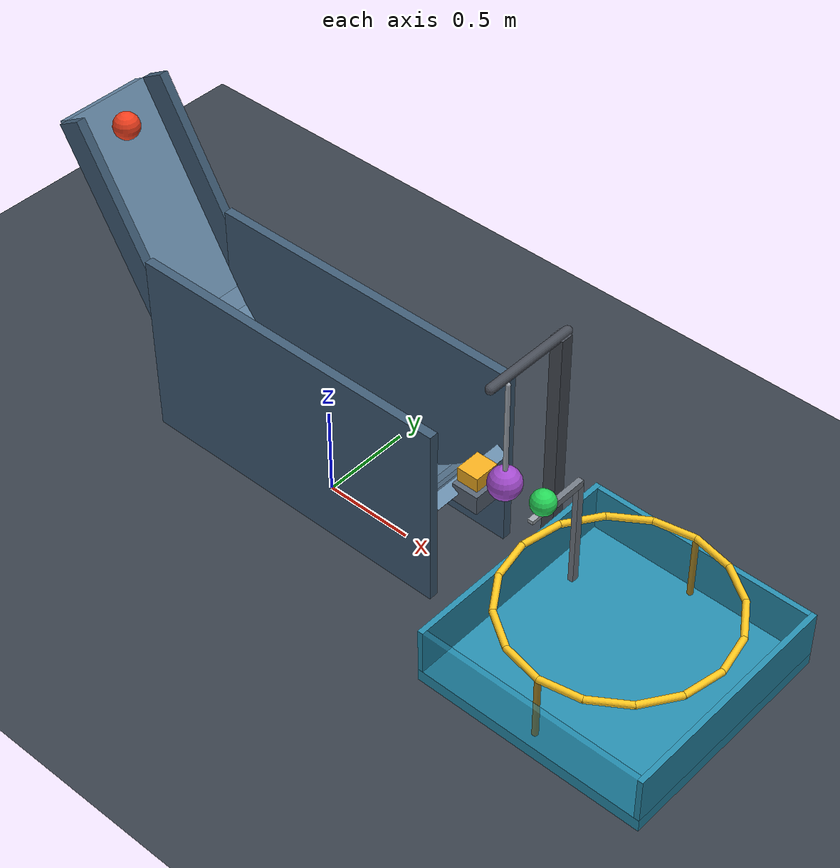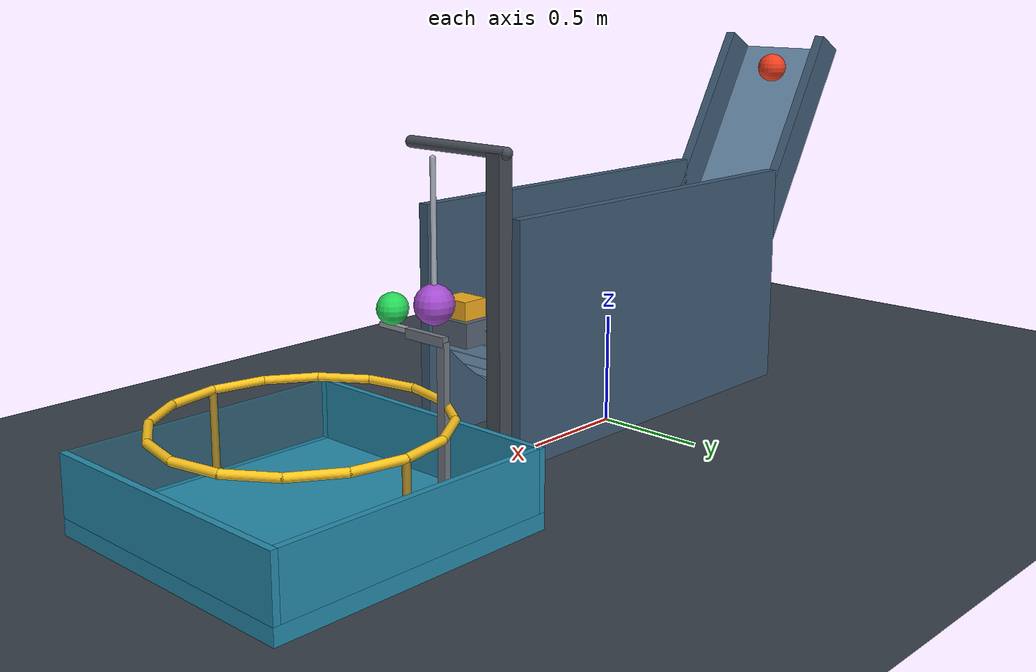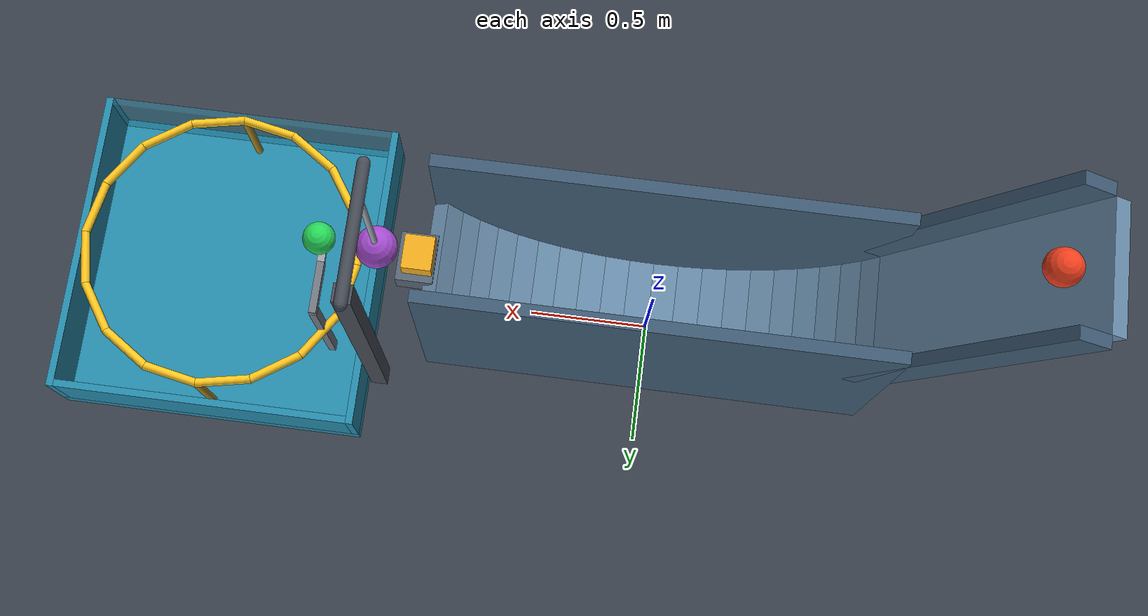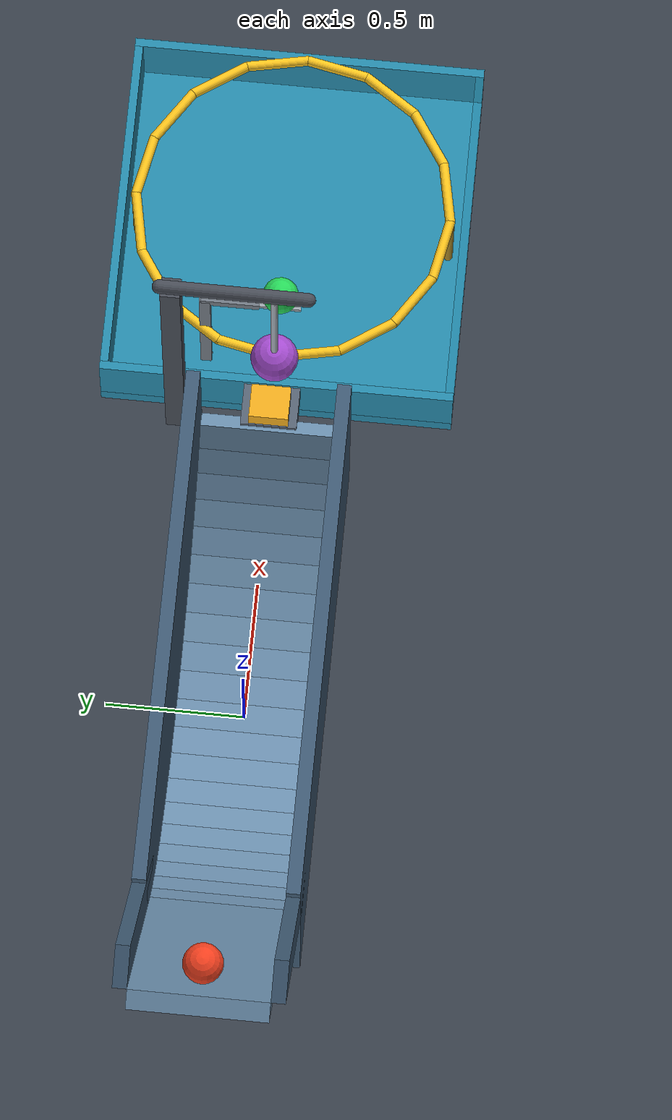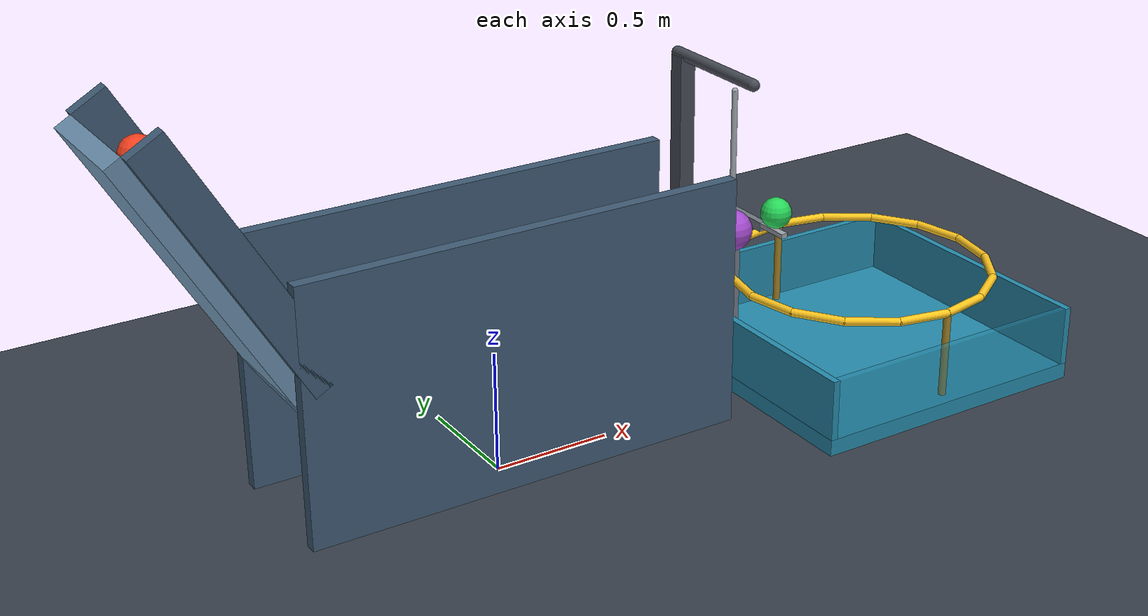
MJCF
<mujoco model="halfpipe_chain_reaction_corrected">
  <compiler angle="degree" autolimits="true"/>
  <option timestep="0.002" gravity="0 0 -9.81" integrator="implicitfast" solver="Newton" iterations="80" cone="elliptic"/>
  <size njmax="3000" nconmax="500"/>
  <visual>
    <global azimuth="135" elevation="-20"/>
    <headlight ambient="0.45 0.45 0.45" diffuse="0.7 0.7 0.7" specular="0.2 0.2 0.2"/>
  </visual>

  <worldbody>
    <light name="overhead" pos="0 0 4" dir="0 0 -1" diffuse="0.8 0.8 0.8"/>
    <camera name="overview" pos="0.5 -5.5 3.0" xyaxes="1 0 0 0 0.40 0.9165"/>
    <geom name="floor" type="plane" pos="0 0 0" size="5 4 0.1" friction="0.8 0.01 0.001" rgba="0.22 0.25 0.29 1"/>

    <!-- Ball1 starts 1 m uphill along the ramp from the halfpipe junction. -->
    <body name="ramp">
      <geom name="ramp_surface" type="box" pos="-1.183836 0 1.160465" euler="0 60 0" size="0.575 0.24 0.035" friction="0.3 0.001 0.0001" condim="3" solref="0.008 1" rgba="0.42 0.56 0.68 1"/>
      <geom name="ramp_rail_left" type="box" pos="-1.088573 -0.265 1.215465" euler="0 60 0" size="0.575 0.025 0.075" friction="0.2 0.001 0.0001" rgba="0.25 0.36 0.46 1"/>
      <geom name="ramp_rail_right" type="box" pos="-1.088573 0.265 1.215465" euler="0 60 0" size="0.575 0.025 0.075" friction="0.2 0.001 0.0001" rgba="0.25 0.36 0.46 1"/>
    </body>

    <!-- Twenty tangent panels form the curved track. -->
    <body name="halfpipe">
      <geom name="halfpipe_panel_01" type="box" pos="-0.868025 0 0.616299" euler="0 57 0" size="0.053 0.24 0.035" friction="0.3 0.001 0.0001" condim="3" solref="0.008 1" rgba="0.42 0.56 0.68 1"/>
      <geom name="halfpipe_panel_02" type="box" pos="-0.804347 0 0.528654" euler="0 51 0" size="0.053 0.24 0.035" friction="0.3 0.001 0.0001" condim="3" solref="0.008 1" rgba="0.42 0.56 0.68 1"/>
      <geom name="halfpipe_panel_03" type="box" pos="-0.731856 0 0.448144" euler="0 45 0" size="0.053 0.24 0.035" friction="0.3 0.001 0.0001" condim="3" solref="0.008 1" rgba="0.42 0.56 0.68 1"/>
      <geom name="halfpipe_panel_04" type="box" pos="-0.651346 0 0.375653" euler="0 39 0" size="0.053 0.24 0.035" friction="0.3 0.001 0.0001" condim="3" solref="0.008 1" rgba="0.42 0.56 0.68 1"/>
      <geom name="halfpipe_panel_05" type="box" pos="-0.563701 0 0.311975" euler="0 33 0" size="0.053 0.24 0.035" friction="0.3 0.001 0.0001" condim="3" solref="0.008 1" rgba="0.42 0.56 0.68 1"/>
      <geom name="halfpipe_panel_06" type="box" pos="-0.469880 0 0.257808" euler="0 27 0" size="0.053 0.24 0.035" friction="0.3 0.001 0.0001" condim="3" solref="0.008 1" rgba="0.42 0.56 0.68 1"/>
      <geom name="halfpipe_panel_07" type="box" pos="-0.370911 0 0.213744" euler="0 21 0" size="0.053 0.24 0.035" friction="0.3 0.001 0.0001" condim="3" solref="0.008 1" rgba="0.42 0.56 0.68 1"/>
      <geom name="halfpipe_panel_08" type="box" pos="-0.267878 0 0.180267" euler="0 15 0" size="0.053 0.24 0.035" friction="0.3 0.001 0.0001" condim="3" solref="0.008 1" rgba="0.42 0.56 0.68 1"/>
      <geom name="halfpipe_panel_09" type="box" pos="-0.161909 0 0.157743" euler="0 9 0" size="0.053 0.24 0.035" friction="0.3 0.001 0.0001" condim="3" solref="0.008 1" rgba="0.42 0.56 0.68 1"/>
      <geom name="halfpipe_panel_10" type="box" pos="-0.054168 0 0.146419" euler="0 3 0" size="0.053 0.24 0.035" friction="0.3 0.001 0.0001" condim="3" solref="0.008 1" rgba="0.42 0.56 0.68 1"/>
      <geom name="halfpipe_panel_11" type="box" pos="0.054168 0 0.146419" euler="0 -3 0" size="0.053 0.24 0.035" friction="0.3 0.001 0.0001" condim="3" solref="0.008 1" rgba="0.42 0.56 0.68 1"/>
      <geom name="halfpipe_panel_12" type="box" pos="0.161909 0 0.157743" euler="0 -9 0" size="0.053 0.24 0.035" friction="0.3 0.001 0.0001" condim="3" solref="0.008 1" rgba="0.42 0.56 0.68 1"/>
      <geom name="halfpipe_panel_13" type="box" pos="0.267878 0 0.180267" euler="0 -15 0" size="0.053 0.24 0.035" friction="0.3 0.001 0.0001" condim="3" solref="0.008 1" rgba="0.42 0.56 0.68 1"/>
      <geom name="halfpipe_panel_14" type="box" pos="0.370911 0 0.213744" euler="0 -21 0" size="0.053 0.24 0.035" friction="0.3 0.001 0.0001" condim="3" solref="0.008 1" rgba="0.42 0.56 0.68 1"/>
      <geom name="halfpipe_panel_15" type="box" pos="0.469880 0 0.257808" euler="0 -27 0" size="0.053 0.24 0.035" friction="0.3 0.001 0.0001" condim="3" solref="0.008 1" rgba="0.42 0.56 0.68 1"/>
      <geom name="halfpipe_panel_16" type="box" pos="0.563701 0 0.311975" euler="0 -33 0" size="0.053 0.24 0.035" friction="0.3 0.001 0.0001" condim="3" solref="0.008 1" rgba="0.42 0.56 0.68 1"/>
      <geom name="halfpipe_panel_17" type="box" pos="0.651346 0 0.375653" euler="0 -39 0" size="0.053 0.24 0.035" friction="0.3 0.001 0.0001" condim="3" solref="0.008 1" rgba="0.42 0.56 0.68 1"/>
      <geom name="halfpipe_panel_18" type="box" pos="0.731856 0 0.448144" euler="0 -45 0" size="0.053 0.24 0.035" friction="0.3 0.001 0.0001" condim="3" solref="0.008 1" rgba="0.42 0.56 0.68 1"/>
      <geom name="halfpipe_panel_19" type="box" pos="0.804347 0 0.528654" euler="0 -51 0" size="0.053 0.24 0.035" friction="0.3 0.001 0.0001" condim="3" solref="0.008 1" rgba="0.42 0.56 0.68 1"/>
      <geom name="halfpipe_panel_20" type="box" pos="0.868025 0 0.616299" euler="0 -57 0" size="0.053 0.24 0.035" friction="0.3 0.001 0.0001" condim="3" solref="0.008 1" rgba="0.42 0.56 0.68 1"/>
      <geom name="halfpipe_rail_left" type="box" pos="0 -0.265 0.60" size="0.92 0.025 0.52" friction="0.2 0.001 0.0001" rgba="0.25 0.36 0.46 1"/>
      <geom name="halfpipe_rail_right" type="box" pos="0 0.265 0.60" size="0.92 0.025 0.52" friction="0.2 0.001 0.0001" rgba="0.25 0.36 0.46 1"/>
      <geom name="halfpipe_block_plinth" type="box" pos="0.96 0 0.6325" size="0.075 0.10 0.0525" friction="0.25 0.001 0.0001" condim="3" solref="0.008 1" rgba="0.35 0.40 0.46 1"/>
    </body>

    <body name="ball1" pos="-1.305404 0 1.581025">
      <freejoint name="ball1_free"/>
      <geom name="ball1_sphere" type="sphere" size="0.07" mass="0.35" friction="0.3 0.001 0.0001" condim="3" solref="0.008 1" rgba="0.95 0.25 0.12 1"/>
    </body>

    <!-- The block's underside is above the highest halfpipe surface. -->
    <body name="block" pos="0.95 0 0.725">
      <freejoint name="block_free"/>
      <geom name="block_striker" type="box" size="0.06 0.07 0.04" mass="0.16" friction="0.25 0.002 0.0001" condim="3" solref="0.006 1" rgba="0.95 0.68 0.12 1"/>
    </body>

    <body name="pendulum_support">
      <geom name="pendulum_support_post" type="box" pos="1.115 0.36 0.7075" size="0.035 0.035 0.7075" rgba="0.28 0.30 0.34 1"/>
      <geom name="pendulum_support_crossbar" type="capsule" fromto="1.115 -0.12 1.415 1.115 0.40 1.415" size="0.025" rgba="0.28 0.30 0.34 1"/>
    </body>

    <!-- The rod begins below the crossbar, leaving collision clearance. -->
    <body name="pendulum" pos="1.115 0 1.415">
      <joint name="pendulum_hinge" type="hinge" axis="0 1 0" range="-70 8" damping="0.018" armature="0.001"/>
      <geom name="pendulum_rod" type="capsule" fromto="0 0 -0.055 0 0 -0.58" size="0.012" mass="0.015" friction="0.2 0.001 0.0001" rgba="0.65 0.68 0.72 1"/>
      <geom name="pendulum_bob" type="sphere" pos="0 0 -0.65" size="0.085" mass="0.12" friction="0.2 0.001 0.0001" condim="3" solref="0.006 1" rgba="0.65 0.30 0.82 1"/>
    </body>

    <body name="ball2" pos="1.34 0 0.79">
      <freejoint name="ball2_free"/>
      <geom name="ball2_sphere" type="sphere" size="0.065" mass="0.04" friction="0.8 0.01 0.005" condim="6" solref="0.006 1" rgba="0.15 0.85 0.35 1"/>
    </body>

    <body name="hoop">
      <geom name="hoop_segment_01" type="capsule" fromto="2.37 0 0.44 2.326611 0.218128 0.44" size="0.018" rgba="1 0.78 0.12 1"/>
      <geom name="hoop_segment_02" type="capsule" fromto="2.326611 0.218128 0.44 2.203051 0.403051 0.44" size="0.018" rgba="1 0.78 0.12 1"/>
      <geom name="hoop_segment_03" type="capsule" fromto="2.203051 0.403051 0.44 2.018128 0.526611 0.44" size="0.018" rgba="1 0.78 0.12 1"/>
      <geom name="hoop_segment_04" type="capsule" fromto="2.018128 0.526611 0.44 1.8 0.57 0.44" size="0.018" rgba="1 0.78 0.12 1"/>
      <geom name="hoop_segment_05" type="capsule" fromto="1.8 0.57 0.44 1.581872 0.526611 0.44" size="0.018" rgba="1 0.78 0.12 1"/>
      <geom name="hoop_segment_06" type="capsule" fromto="1.581872 0.526611 0.44 1.396949 0.403051 0.44" size="0.018" rgba="1 0.78 0.12 1"/>
      <geom name="hoop_segment_07" type="capsule" fromto="1.396949 0.403051 0.44 1.273389 0.218128 0.44" size="0.018" rgba="1 0.78 0.12 1"/>
      <geom name="hoop_segment_08" type="capsule" fromto="1.273389 0.218128 0.44 1.23 0 0.44" size="0.018" rgba="1 0.78 0.12 1"/>
      <geom name="hoop_segment_09" type="capsule" fromto="1.23 0 0.44 1.273389 -0.218128 0.44" size="0.018" rgba="1 0.78 0.12 1"/>
      <geom name="hoop_segment_10" type="capsule" fromto="1.273389 -0.218128 0.44 1.396949 -0.403051 0.44" size="0.018" rgba="1 0.78 0.12 1"/>
      <geom name="hoop_segment_11" type="capsule" fromto="1.396949 -0.403051 0.44 1.581872 -0.526611 0.44" size="0.018" rgba="1 0.78 0.12 1"/>
      <geom name="hoop_segment_12" type="capsule" fromto="1.581872 -0.526611 0.44 1.8 -0.57 0.44" size="0.018" rgba="1 0.78 0.12 1"/>
      <geom name="hoop_segment_13" type="capsule" fromto="1.8 -0.57 0.44 2.018128 -0.526611 0.44" size="0.018" rgba="1 0.78 0.12 1"/>
      <geom name="hoop_segment_14" type="capsule" fromto="2.018128 -0.526611 0.44 2.203051 -0.403051 0.44" size="0.018" rgba="1 0.78 0.12 1"/>
      <geom name="hoop_segment_15" type="capsule" fromto="2.203051 -0.403051 0.44 2.326611 -0.218128 0.44" size="0.018" rgba="1 0.78 0.12 1"/>
      <geom name="hoop_segment_16" type="capsule" fromto="2.326611 -0.218128 0.44 2.37 0 0.44" size="0.018" rgba="1 0.78 0.12 1"/>
      <geom name="hoop_support_left" type="capsule" fromto="1.8 -0.57 0.07 1.8 -0.57 0.44" size="0.016" rgba="0.65 0.52 0.15 1"/>
      <geom name="hoop_support_right" type="capsule" fromto="1.8 0.57 0.07 1.8 0.57 0.44" size="0.016" rgba="0.65 0.52 0.15 1"/>
    </body>

    <body name="cup">
      <geom name="cup_bottom" type="box" pos="1.8 0 0.035" size="0.64 0.64 0.035" friction="1 0.03 0.02" condim="6" solref="0.006 1" rgba="0.15 0.55 0.68 1"/>
      <geom name="cup_wall_left" type="box" pos="1.175 0 0.20" size="0.015 0.64 0.13" friction="1 0.03 0.02" condim="6" solref="0.006 1" rgba="0.15 0.55 0.68 1"/>
      <geom name="cup_wall_right" type="box" pos="2.425 0 0.20" size="0.015 0.64 0.13" friction="1 0.03 0.02" condim="6" solref="0.006 1" rgba="0.15 0.55 0.68 1"/>
      <geom name="cup_wall_front" type="box" pos="1.8 -0.625 0.20" size="0.61 0.015 0.13" friction="1 0.03 0.02" condim="6" solref="0.006 1" rgba="0.15 0.55 0.68 0.45"/>
      <geom name="cup_wall_back" type="box" pos="1.8 0.625 0.20" size="0.61 0.015 0.13" friction="1 0.03 0.02" condim="6" solref="0.006 1" rgba="0.15 0.55 0.68 1"/>
      <geom name="cup_launch_perch" type="box" pos="1.33 0 0.715" size="0.015 0.075 0.01" friction="0.3 0.001 0.0001" condim="3" solref="0.006 1" rgba="0.62 0.65 0.68 1"/>
      <geom name="cup_perch_bracket" type="box" pos="1.33 0.18 0.705" size="0.015 0.105 0.02" friction="0.3 0.001 0.0001" rgba="0.45 0.48 0.52 1"/>
      <geom name="cup_perch_post" type="box" pos="1.33 0.27 0.3875" size="0.015 0.02 0.3175" rgba="0.45 0.48 0.52 1"/>
    </body>
  </worldbody>

  <keyframe>
    <key name="start" qpos="-1.305404 0 1.581025 1 0 0 0 0.95 0 0.725 1 0 0 0 0 1.34 0 0.79 1 0 0 0"/>
  </keyframe>
</mujoco>
